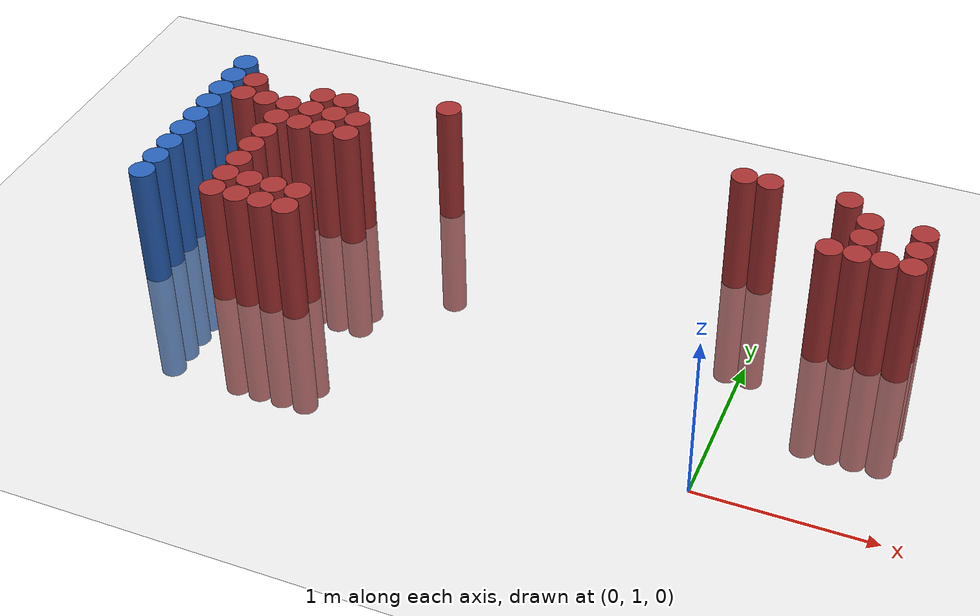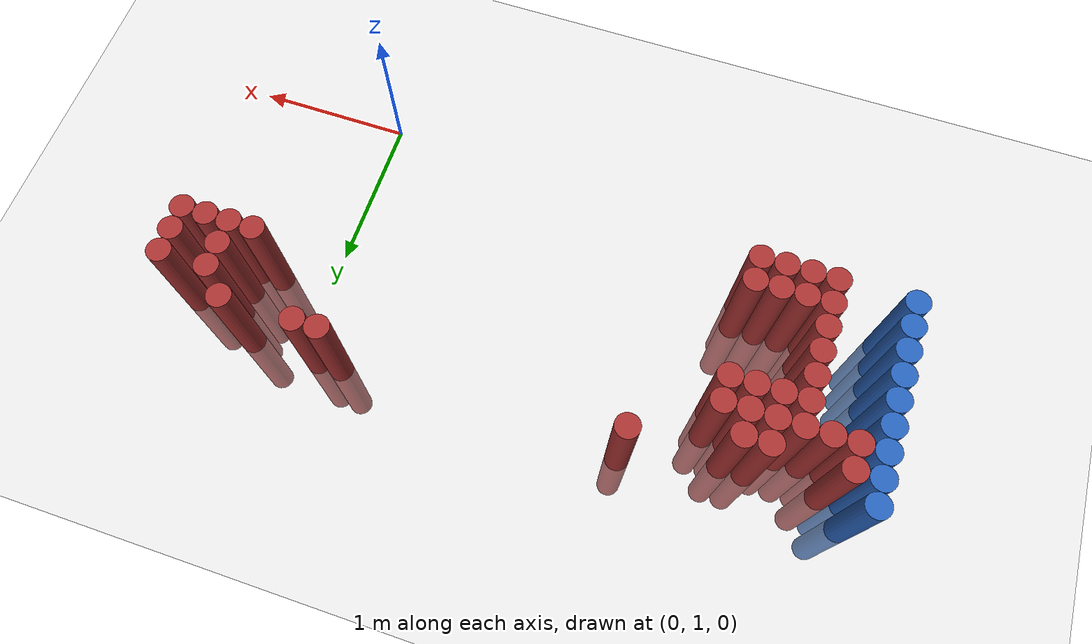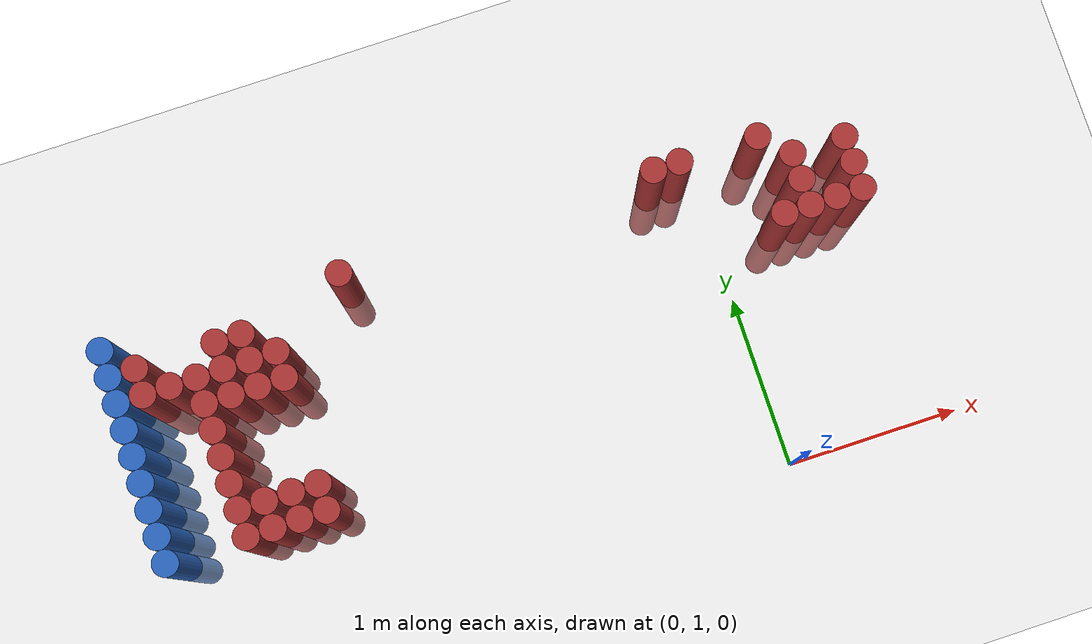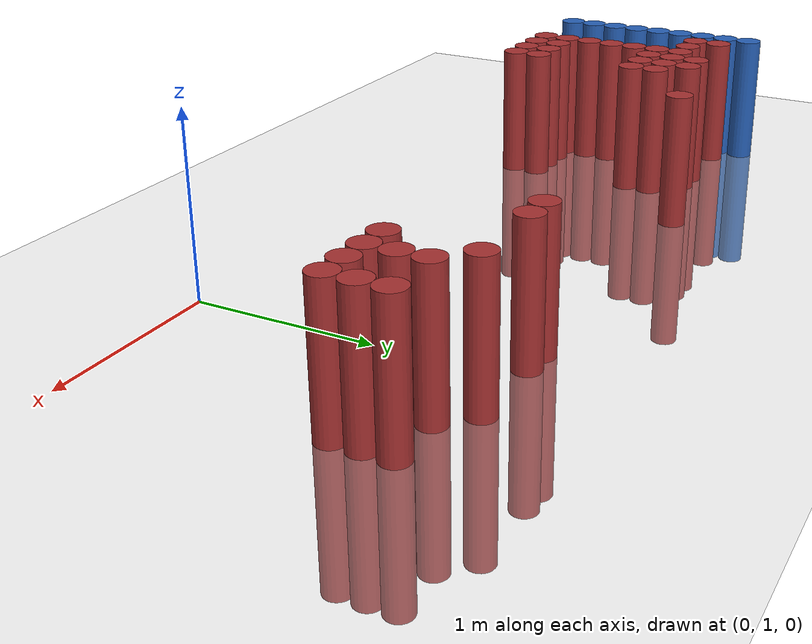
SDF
<sdf version="1.6">
 <world name="default">
  <model name="ground_plane">
   <static>1</static>
   <link name="link">
    <collision name="collision">
     <geometry><plane><normal>0 0 1</normal><size>100 100</size></plane></geometry>
     <surface><friction><ode><mu>100</mu><mu2>50</mu2></ode></friction></surface>
    </collision>
    <visual name="visual">
     <cast_shadows>0</cast_shadows>
     <geometry><plane><normal>0 0 1</normal><size>100 100</size></plane></geometry>
     <material>
      <script><uri>file://media/materials/scripts/gazebo.material</uri><name>Gazebo/Grey</name></script>
     </material>
    </visual>
   </link>
  </model>
  <model name="unit_cylinder_135">
   <static>1</static>
   <pose>-3.425000 1.525000 0.000000 0.000000 0.000000 0.000000</pose>
   <link name="link">
    <inertial>
     <mass>1</mass>
     <inertia><ixx>0.145833</ixx><ixy>0</ixy><ixz>0</ixz><iyy>0.145833</iyy><iyz>0</iyz><izz>0.125</izz></inertia>
    </inertial>
    <collision name="collision">
     <geometry><cylinder><radius>0.075000</radius><length>1.5</length></cylinder></geometry>
    </collision>
    <visual name="visual">
     <geometry><cylinder><radius>0.075000</radius><length>1.5</length></cylinder></geometry>
     <material>
      <ambient>0.152000 0.379000 0.720000 1</ambient>
      <diffuse>0.152000 0.379000 0.720000 1</diffuse>
     </material>
     <material>
      <script><name>Gazebo/Grey</name><uri>file://media/materials/scripts/gazebo.material</uri></script>
     </material>
    </visual>
   </link>
  </model>
  <model name="unit_cylinder_137">
   <static>1</static>
   <pose>-3.425000 1.675000 0.000000 0.000000 0.000000 0.000000</pose>
   <link name="link">
    <inertial>
     <mass>1</mass>
     <inertia><ixx>0.145833</ixx><ixy>0</ixy><ixz>0</ixz><iyy>0.145833</iyy><iyz>0</iyz><izz>0.125</izz></inertia>
    </inertial>
    <collision name="collision">
     <geometry><cylinder><radius>0.075000</radius><length>1.5</length></cylinder></geometry>
    </collision>
    <visual name="visual">
     <geometry><cylinder><radius>0.075000</radius><length>1.5</length></cylinder></geometry>
     <material>
      <ambient>0.152000 0.379000 0.720000 1</ambient>
      <diffuse>0.152000 0.379000 0.720000 1</diffuse>
     </material>
     <material>
      <script><name>Gazebo/Grey</name><uri>file://media/materials/scripts/gazebo.material</uri></script>
     </material>
    </visual>
   </link>
  </model>
  <model name="unit_cylinder_139">
   <static>1</static>
   <pose>-3.425000 1.825000 0.000000 0.000000 0.000000 0.000000</pose>
   <link name="link">
    <inertial>
     <mass>1</mass>
     <inertia><ixx>0.145833</ixx><ixy>0</ixy><ixz>0</ixz><iyy>0.145833</iyy><iyz>0</iyz><izz>0.125</izz></inertia>
    </inertial>
    <collision name="collision">
     <geometry><cylinder><radius>0.075000</radius><length>1.5</length></cylinder></geometry>
    </collision>
    <visual name="visual">
     <geometry><cylinder><radius>0.075000</radius><length>1.5</length></cylinder></geometry>
     <material>
      <ambient>0.152000 0.379000 0.720000 1</ambient>
      <diffuse>0.152000 0.379000 0.720000 1</diffuse>
     </material>
     <material>
      <script><name>Gazebo/Grey</name><uri>file://media/materials/scripts/gazebo.material</uri></script>
     </material>
    </visual>
   </link>
  </model>
  <model name="unit_cylinder_141">
   <static>1</static>
   <pose>-3.425000 1.975000 0.000000 0.000000 0.000000 0.000000</pose>
   <link name="link">
    <inertial>
     <mass>1</mass>
     <inertia><ixx>0.145833</ixx><ixy>0</ixy><ixz>0</ixz><iyy>0.145833</iyy><iyz>0</iyz><izz>0.125</izz></inertia>
    </inertial>
    <collision name="collision">
     <geometry><cylinder><radius>0.075000</radius><length>1.5</length></cylinder></geometry>
    </collision>
    <visual name="visual">
     <geometry><cylinder><radius>0.075000</radius><length>1.5</length></cylinder></geometry>
     <material>
      <ambient>0.152000 0.379000 0.720000 1</ambient>
      <diffuse>0.152000 0.379000 0.720000 1</diffuse>
     </material>
     <material>
      <script><name>Gazebo/Grey</name><uri>file://media/materials/scripts/gazebo.material</uri></script>
     </material>
    </visual>
   </link>
  </model>
  <model name="unit_cylinder_143">
   <static>1</static>
   <pose>-3.425000 2.125000 0.000000 0.000000 0.000000 0.000000</pose>
   <link name="link">
    <inertial>
     <mass>1</mass>
     <inertia><ixx>0.145833</ixx><ixy>0</ixy><ixz>0</ixz><iyy>0.145833</iyy><iyz>0</iyz><izz>0.125</izz></inertia>
    </inertial>
    <collision name="collision">
     <geometry><cylinder><radius>0.075000</radius><length>1.5</length></cylinder></geometry>
    </collision>
    <visual name="visual">
     <geometry><cylinder><radius>0.075000</radius><length>1.5</length></cylinder></geometry>
     <material>
      <ambient>0.152000 0.379000 0.720000 1</ambient>
      <diffuse>0.152000 0.379000 0.720000 1</diffuse>
     </material>
     <material>
      <script><name>Gazebo/Grey</name><uri>file://media/materials/scripts/gazebo.material</uri></script>
     </material>
    </visual>
   </link>
  </model>
  <model name="unit_cylinder_145">
   <static>1</static>
   <pose>-3.425000 2.275000 0.000000 0.000000 0.000000 0.000000</pose>
   <link name="link">
    <inertial>
     <mass>1</mass>
     <inertia><ixx>0.145833</ixx><ixy>0</ixy><ixz>0</ixz><iyy>0.145833</iyy><iyz>0</iyz><izz>0.125</izz></inertia>
    </inertial>
    <collision name="collision">
     <geometry><cylinder><radius>0.075000</radius><length>1.5</length></cylinder></geometry>
    </collision>
    <visual name="visual">
     <geometry><cylinder><radius>0.075000</radius><length>1.5</length></cylinder></geometry>
     <material>
      <ambient>0.152000 0.379000 0.720000 1</ambient>
      <diffuse>0.152000 0.379000 0.720000 1</diffuse>
     </material>
     <material>
      <script><name>Gazebo/Grey</name><uri>file://media/materials/scripts/gazebo.material</uri></script>
     </material>
    </visual>
   </link>
  </model>
  <model name="unit_cylinder_147">
   <static>1</static>
   <pose>-3.425000 2.425000 0.000000 0.000000 0.000000 0.000000</pose>
   <link name="link">
    <inertial>
     <mass>1</mass>
     <inertia><ixx>0.145833</ixx><ixy>0</ixy><ixz>0</ixz><iyy>0.145833</iyy><iyz>0</iyz><izz>0.125</izz></inertia>
    </inertial>
    <collision name="collision">
     <geometry><cylinder><radius>0.075000</radius><length>1.5</length></cylinder></geometry>
    </collision>
    <visual name="visual">
     <geometry><cylinder><radius>0.075000</radius><length>1.5</length></cylinder></geometry>
     <material>
      <ambient>0.152000 0.379000 0.720000 1</ambient>
      <diffuse>0.152000 0.379000 0.720000 1</diffuse>
     </material>
     <material>
      <script><name>Gazebo/Grey</name><uri>file://media/materials/scripts/gazebo.material</uri></script>
     </material>
    </visual>
   </link>
  </model>
  <model name="unit_cylinder_149">
   <static>1</static>
   <pose>-3.425000 2.575000 0.000000 0.000000 0.000000 0.000000</pose>
   <link name="link">
    <inertial>
     <mass>1</mass>
     <inertia><ixx>0.145833</ixx><ixy>0</ixy><ixz>0</ixz><iyy>0.145833</iyy><iyz>0</iyz><izz>0.125</izz></inertia>
    </inertial>
    <collision name="collision">
     <geometry><cylinder><radius>0.075000</radius><length>1.5</length></cylinder></geometry>
    </collision>
    <visual name="visual">
     <geometry><cylinder><radius>0.075000</radius><length>1.5</length></cylinder></geometry>
     <material>
      <ambient>0.152000 0.379000 0.720000 1</ambient>
      <diffuse>0.152000 0.379000 0.720000 1</diffuse>
     </material>
     <material>
      <script><name>Gazebo/Grey</name><uri>file://media/materials/scripts/gazebo.material</uri></script>
     </material>
    </visual>
   </link>
  </model>
  <model name="unit_cylinder_151">
   <static>1</static>
   <pose>-3.425000 2.725000 0.000000 0.000000 0.000000 0.000000</pose>
   <link name="link">
    <inertial>
     <mass>1</mass>
     <inertia><ixx>0.145833</ixx><ixy>0</ixy><ixz>0</ixz><iyy>0.145833</iyy><iyz>0</iyz><izz>0.125</izz></inertia>
    </inertial>
    <collision name="collision">
     <geometry><cylinder><radius>0.075000</radius><length>1.5</length></cylinder></geometry>
    </collision>
    <visual name="visual">
     <geometry><cylinder><radius>0.075000</radius><length>1.5</length></cylinder></geometry>
     <material>
      <ambient>0.152000 0.379000 0.720000 1</ambient>
      <diffuse>0.152000 0.379000 0.720000 1</diffuse>
     </material>
     <material>
      <script><name>Gazebo/Grey</name><uri>file://media/materials/scripts/gazebo.material</uri></script>
     </material>
    </visual>
   </link>
  </model>
  <model name="unit_cylinder_231">
   <static>1</static>
   <pose>-3.425000 1.525000 0.000000 0.000000 0.000000 0.000000</pose>
   <link name="link">
    <inertial>
     <mass>1</mass>
     <inertia><ixx>0.145833</ixx><ixy>0</ixy><ixz>0</ixz><iyy>0.145833</iyy><iyz>0</iyz><izz>0.125</izz></inertia>
    </inertial>
    <collision name="collision">
     <geometry><cylinder><radius>0.075000</radius><length>1.5</length></cylinder></geometry>
    </collision>
    <visual name="visual">
     <geometry><cylinder><radius>0.075000</radius><length>1.5</length></cylinder></geometry>
     <material>
      <ambient>0.152000 0.379000 0.720000 1</ambient>
      <diffuse>0.152000 0.379000 0.720000 1</diffuse>
     </material>
     <material>
      <script><name>Gazebo/Grey</name><uri>file://media/materials/scripts/gazebo.material</uri></script>
     </material>
    </visual>
   </link>
  </model>
  <model name="unit_cylinder_232">
   <static>1</static>
   <pose>-3.425000 1.675000 0.000000 0.000000 0.000000 0.000000</pose>
   <link name="link">
    <inertial>
     <mass>1</mass>
     <inertia><ixx>0.145833</ixx><ixy>0</ixy><ixz>0</ixz><iyy>0.145833</iyy><iyz>0</iyz><izz>0.125</izz></inertia>
    </inertial>
    <collision name="collision">
     <geometry><cylinder><radius>0.075000</radius><length>1.5</length></cylinder></geometry>
    </collision>
    <visual name="visual">
     <geometry><cylinder><radius>0.075000</radius><length>1.5</length></cylinder></geometry>
     <material>
      <ambient>0.152000 0.379000 0.720000 1</ambient>
      <diffuse>0.152000 0.379000 0.720000 1</diffuse>
     </material>
     <material>
      <script><name>Gazebo/Grey</name><uri>file://media/materials/scripts/gazebo.material</uri></script>
     </material>
    </visual>
   </link>
  </model>
  <model name="unit_cylinder_233">
   <static>1</static>
   <pose>-3.425000 1.825000 0.000000 0.000000 0.000000 0.000000</pose>
   <link name="link">
    <inertial>
     <mass>1</mass>
     <inertia><ixx>0.145833</ixx><ixy>0</ixy><ixz>0</ixz><iyy>0.145833</iyy><iyz>0</iyz><izz>0.125</izz></inertia>
    </inertial>
    <collision name="collision">
     <geometry><cylinder><radius>0.075000</radius><length>1.5</length></cylinder></geometry>
    </collision>
    <visual name="visual">
     <geometry><cylinder><radius>0.075000</radius><length>1.5</length></cylinder></geometry>
     <material>
      <ambient>0.152000 0.379000 0.720000 1</ambient>
      <diffuse>0.152000 0.379000 0.720000 1</diffuse>
     </material>
     <material>
      <script><name>Gazebo/Grey</name><uri>file://media/materials/scripts/gazebo.material</uri></script>
     </material>
    </visual>
   </link>
  </model>
  <model name="unit_cylinder_234">
   <static>1</static>
   <pose>-3.425000 1.975000 0.000000 0.000000 0.000000 0.000000</pose>
   <link name="link">
    <inertial>
     <mass>1</mass>
     <inertia><ixx>0.145833</ixx><ixy>0</ixy><ixz>0</ixz><iyy>0.145833</iyy><iyz>0</iyz><izz>0.125</izz></inertia>
    </inertial>
    <collision name="collision">
     <geometry><cylinder><radius>0.075000</radius><length>1.5</length></cylinder></geometry>
    </collision>
    <visual name="visual">
     <geometry><cylinder><radius>0.075000</radius><length>1.5</length></cylinder></geometry>
     <material>
      <ambient>0.152000 0.379000 0.720000 1</ambient>
      <diffuse>0.152000 0.379000 0.720000 1</diffuse>
     </material>
     <material>
      <script><name>Gazebo/Grey</name><uri>file://media/materials/scripts/gazebo.material</uri></script>
     </material>
    </visual>
   </link>
  </model>
  <model name="unit_cylinder_235">
   <static>1</static>
   <pose>-3.425000 2.125000 0.000000 0.000000 0.000000 0.000000</pose>
   <link name="link">
    <inertial>
     <mass>1</mass>
     <inertia><ixx>0.145833</ixx><ixy>0</ixy><ixz>0</ixz><iyy>0.145833</iyy><iyz>0</iyz><izz>0.125</izz></inertia>
    </inertial>
    <collision name="collision">
     <geometry><cylinder><radius>0.075000</radius><length>1.5</length></cylinder></geometry>
    </collision>
    <visual name="visual">
     <geometry><cylinder><radius>0.075000</radius><length>1.5</length></cylinder></geometry>
     <material>
      <ambient>0.152000 0.379000 0.720000 1</ambient>
      <diffuse>0.152000 0.379000 0.720000 1</diffuse>
     </material>
     <material>
      <script><name>Gazebo/Grey</name><uri>file://media/materials/scripts/gazebo.material</uri></script>
     </material>
    </visual>
   </link>
  </model>
  <model name="unit_cylinder_236">
   <static>1</static>
   <pose>-3.425000 2.275000 0.000000 0.000000 0.000000 0.000000</pose>
   <link name="link">
    <inertial>
     <mass>1</mass>
     <inertia><ixx>0.145833</ixx><ixy>0</ixy><ixz>0</ixz><iyy>0.145833</iyy><iyz>0</iyz><izz>0.125</izz></inertia>
    </inertial>
    <collision name="collision">
     <geometry><cylinder><radius>0.075000</radius><length>1.5</length></cylinder></geometry>
    </collision>
    <visual name="visual">
     <geometry><cylinder><radius>0.075000</radius><length>1.5</length></cylinder></geometry>
     <material>
      <ambient>0.152000 0.379000 0.720000 1</ambient>
      <diffuse>0.152000 0.379000 0.720000 1</diffuse>
     </material>
     <material>
      <script><name>Gazebo/Grey</name><uri>file://media/materials/scripts/gazebo.material</uri></script>
     </material>
    </visual>
   </link>
  </model>
  <model name="unit_cylinder_237">
   <static>1</static>
   <pose>-3.425000 2.425000 0.000000 0.000000 0.000000 0.000000</pose>
   <link name="link">
    <inertial>
     <mass>1</mass>
     <inertia><ixx>0.145833</ixx><ixy>0</ixy><ixz>0</ixz><iyy>0.145833</iyy><iyz>0</iyz><izz>0.125</izz></inertia>
    </inertial>
    <collision name="collision">
     <geometry><cylinder><radius>0.075000</radius><length>1.5</length></cylinder></geometry>
    </collision>
    <visual name="visual">
     <geometry><cylinder><radius>0.075000</radius><length>1.5</length></cylinder></geometry>
     <material>
      <ambient>0.152000 0.379000 0.720000 1</ambient>
      <diffuse>0.152000 0.379000 0.720000 1</diffuse>
     </material>
     <material>
      <script><name>Gazebo/Grey</name><uri>file://media/materials/scripts/gazebo.material</uri></script>
     </material>
    </visual>
   </link>
  </model>
  <model name="unit_cylinder_238">
   <static>1</static>
   <pose>-3.425000 2.575000 0.000000 0.000000 0.000000 0.000000</pose>
   <link name="link">
    <inertial>
     <mass>1</mass>
     <inertia><ixx>0.145833</ixx><ixy>0</ixy><ixz>0</ixz><iyy>0.145833</iyy><iyz>0</iyz><izz>0.125</izz></inertia>
    </inertial>
    <collision name="collision">
     <geometry><cylinder><radius>0.075000</radius><length>1.5</length></cylinder></geometry>
    </collision>
    <visual name="visual">
     <geometry><cylinder><radius>0.075000</radius><length>1.5</length></cylinder></geometry>
     <material>
      <ambient>0.152000 0.379000 0.720000 1</ambient>
      <diffuse>0.152000 0.379000 0.720000 1</diffuse>
     </material>
     <material>
      <script><name>Gazebo/Grey</name><uri>file://media/materials/scripts/gazebo.material</uri></script>
     </material>
    </visual>
   </link>
  </model>
  <model name="unit_cylinder_239">
   <static>1</static>
   <pose>-3.425000 2.725000 0.000000 0.000000 0.000000 0.000000</pose>
   <link name="link">
    <inertial>
     <mass>1</mass>
     <inertia><ixx>0.145833</ixx><ixy>0</ixy><ixz>0</ixz><iyy>0.145833</iyy><iyz>0</iyz><izz>0.125</izz></inertia>
    </inertial>
    <collision name="collision">
     <geometry><cylinder><radius>0.075000</radius><length>1.5</length></cylinder></geometry>
    </collision>
    <visual name="visual">
     <geometry><cylinder><radius>0.075000</radius><length>1.5</length></cylinder></geometry>
     <material>
      <ambient>0.152000 0.379000 0.720000 1</ambient>
      <diffuse>0.152000 0.379000 0.720000 1</diffuse>
     </material>
     <material>
      <script><name>Gazebo/Grey</name><uri>file://media/materials/scripts/gazebo.material</uri></script>
     </material>
    </visual>
   </link>
  </model>
  <model name="unit_cylinder_272">
   <static>1</static>
   <pose>-3.275000 2.425000 0.000000 0.000000 0.000000 0.000000</pose>
   <link name="link">
    <inertial>
     <mass>1</mass>
     <inertia><ixx>0.145833</ixx><ixy>0</ixy><ixz>0</ixz><iyy>0.145833</iyy><iyz>0</iyz><izz>0.125</izz></inertia>
    </inertial>
    <collision name="collision">
     <geometry><cylinder><radius>0.075000</radius><length>1.5</length></cylinder></geometry>
    </collision>
    <visual name="visual">
     <geometry><cylinder><radius>0.075000</radius><length>1.5</length></cylinder></geometry>
     <material>
      <ambient>0.648000 0.192000 0.192000 1</ambient>
      <diffuse>0.648000 0.192000 0.192000 1</diffuse>
     </material>
     <material>
      <script><name>Gazebo/Grey</name><uri>file://media/materials/scripts/gazebo.material</uri></script>
     </material>
    </visual>
   </link>
  </model>
  <model name="unit_cylinder_273">
   <static>1</static>
   <pose>-3.275000 2.575000 0.000000 0.000000 0.000000 0.000000</pose>
   <link name="link">
    <inertial>
     <mass>1</mass>
     <inertia><ixx>0.145833</ixx><ixy>0</ixy><ixz>0</ixz><iyy>0.145833</iyy><iyz>0</iyz><izz>0.125</izz></inertia>
    </inertial>
    <collision name="collision">
     <geometry><cylinder><radius>0.075000</radius><length>1.5</length></cylinder></geometry>
    </collision>
    <visual name="visual">
     <geometry><cylinder><radius>0.075000</radius><length>1.5</length></cylinder></geometry>
     <material>
      <ambient>0.648000 0.192000 0.192000 1</ambient>
      <diffuse>0.648000 0.192000 0.192000 1</diffuse>
     </material>
     <material>
      <script><name>Gazebo/Grey</name><uri>file://media/materials/scripts/gazebo.material</uri></script>
     </material>
    </visual>
   </link>
  </model>
  <model name="unit_cylinder_287">
   <static>1</static>
   <pose>-3.125000 2.425000 0.000000 0.000000 0.000000 0.000000</pose>
   <link name="link">
    <inertial>
     <mass>1</mass>
     <inertia><ixx>0.145833</ixx><ixy>0</ixy><ixz>0</ixz><iyy>0.145833</iyy><iyz>0</iyz><izz>0.125</izz></inertia>
    </inertial>
    <collision name="collision">
     <geometry><cylinder><radius>0.075000</radius><length>1.5</length></cylinder></geometry>
    </collision>
    <visual name="visual">
     <geometry><cylinder><radius>0.075000</radius><length>1.5</length></cylinder></geometry>
     <material>
      <ambient>0.648000 0.192000 0.192000 1</ambient>
      <diffuse>0.648000 0.192000 0.192000 1</diffuse>
     </material>
     <material>
      <script><name>Gazebo/Grey</name><uri>file://media/materials/scripts/gazebo.material</uri></script>
     </material>
    </visual>
   </link>
  </model>
  <model name="unit_cylinder_303">
   <static>1</static>
   <pose>-2.975000 1.525000 0.000000 0.000000 0.000000 0.000000</pose>
   <link name="link">
    <inertial>
     <mass>1</mass>
     <inertia><ixx>0.145833</ixx><ixy>0</ixy><ixz>0</ixz><iyy>0.145833</iyy><iyz>0</iyz><izz>0.125</izz></inertia>
    </inertial>
    <collision name="collision">
     <geometry><cylinder><radius>0.075000</radius><length>1.5</length></cylinder></geometry>
    </collision>
    <visual name="visual">
     <geometry><cylinder><radius>0.075000</radius><length>1.5</length></cylinder></geometry>
     <material>
      <ambient>0.648000 0.192000 0.192000 1</ambient>
      <diffuse>0.648000 0.192000 0.192000 1</diffuse>
     </material>
     <material>
      <script><name>Gazebo/Grey</name><uri>file://media/materials/scripts/gazebo.material</uri></script>
     </material>
    </visual>
   </link>
  </model>
  <model name="unit_cylinder_304">
   <static>1</static>
   <pose>-2.975000 1.675000 0.000000 0.000000 0.000000 0.000000</pose>
   <link name="link">
    <inertial>
     <mass>1</mass>
     <inertia><ixx>0.145833</ixx><ixy>0</ixy><ixz>0</ixz><iyy>0.145833</iyy><iyz>0</iyz><izz>0.125</izz></inertia>
    </inertial>
    <collision name="collision">
     <geometry><cylinder><radius>0.075000</radius><length>1.5</length></cylinder></geometry>
    </collision>
    <visual name="visual">
     <geometry><cylinder><radius>0.075000</radius><length>1.5</length></cylinder></geometry>
     <material>
      <ambient>0.648000 0.192000 0.192000 1</ambient>
      <diffuse>0.648000 0.192000 0.192000 1</diffuse>
     </material>
     <material>
      <script><name>Gazebo/Grey</name><uri>file://media/materials/scripts/gazebo.material</uri></script>
     </material>
    </visual>
   </link>
  </model>
  <model name="unit_cylinder_305">
   <static>1</static>
   <pose>-2.975000 1.825000 0.000000 0.000000 0.000000 0.000000</pose>
   <link name="link">
    <inertial>
     <mass>1</mass>
     <inertia><ixx>0.145833</ixx><ixy>0</ixy><ixz>0</ixz><iyy>0.145833</iyy><iyz>0</iyz><izz>0.125</izz></inertia>
    </inertial>
    <collision name="collision">
     <geometry><cylinder><radius>0.075000</radius><length>1.5</length></cylinder></geometry>
    </collision>
    <visual name="visual">
     <geometry><cylinder><radius>0.075000</radius><length>1.5</length></cylinder></geometry>
     <material>
      <ambient>0.648000 0.192000 0.192000 1</ambient>
      <diffuse>0.648000 0.192000 0.192000 1</diffuse>
     </material>
     <material>
      <script><name>Gazebo/Grey</name><uri>file://media/materials/scripts/gazebo.material</uri></script>
     </material>
    </visual>
   </link>
  </model>
  <model name="unit_cylinder_306">
   <static>1</static>
   <pose>-2.975000 1.975000 0.000000 0.000000 0.000000 0.000000</pose>
   <link name="link">
    <inertial>
     <mass>1</mass>
     <inertia><ixx>0.145833</ixx><ixy>0</ixy><ixz>0</ixz><iyy>0.145833</iyy><iyz>0</iyz><izz>0.125</izz></inertia>
    </inertial>
    <collision name="collision">
     <geometry><cylinder><radius>0.075000</radius><length>1.5</length></cylinder></geometry>
    </collision>
    <visual name="visual">
     <geometry><cylinder><radius>0.075000</radius><length>1.5</length></cylinder></geometry>
     <material>
      <ambient>0.648000 0.192000 0.192000 1</ambient>
      <diffuse>0.648000 0.192000 0.192000 1</diffuse>
     </material>
     <material>
      <script><name>Gazebo/Grey</name><uri>file://media/materials/scripts/gazebo.material</uri></script>
     </material>
    </visual>
   </link>
  </model>
  <model name="unit_cylinder_307">
   <static>1</static>
   <pose>-2.975000 2.125000 0.000000 0.000000 0.000000 0.000000</pose>
   <link name="link">
    <inertial>
     <mass>1</mass>
     <inertia><ixx>0.145833</ixx><ixy>0</ixy><ixz>0</ixz><iyy>0.145833</iyy><iyz>0</iyz><izz>0.125</izz></inertia>
    </inertial>
    <collision name="collision">
     <geometry><cylinder><radius>0.075000</radius><length>1.5</length></cylinder></geometry>
    </collision>
    <visual name="visual">
     <geometry><cylinder><radius>0.075000</radius><length>1.5</length></cylinder></geometry>
     <material>
      <ambient>0.648000 0.192000 0.192000 1</ambient>
      <diffuse>0.648000 0.192000 0.192000 1</diffuse>
     </material>
     <material>
      <script><name>Gazebo/Grey</name><uri>file://media/materials/scripts/gazebo.material</uri></script>
     </material>
    </visual>
   </link>
  </model>
  <model name="unit_cylinder_308">
   <static>1</static>
   <pose>-2.975000 2.275000 0.000000 0.000000 0.000000 0.000000</pose>
   <link name="link">
    <inertial>
     <mass>1</mass>
     <inertia><ixx>0.145833</ixx><ixy>0</ixy><ixz>0</ixz><iyy>0.145833</iyy><iyz>0</iyz><izz>0.125</izz></inertia>
    </inertial>
    <collision name="collision">
     <geometry><cylinder><radius>0.075000</radius><length>1.5</length></cylinder></geometry>
    </collision>
    <visual name="visual">
     <geometry><cylinder><radius>0.075000</radius><length>1.5</length></cylinder></geometry>
     <material>
      <ambient>0.648000 0.192000 0.192000 1</ambient>
      <diffuse>0.648000 0.192000 0.192000 1</diffuse>
     </material>
     <material>
      <script><name>Gazebo/Grey</name><uri>file://media/materials/scripts/gazebo.material</uri></script>
     </material>
    </visual>
   </link>
  </model>
  <model name="unit_cylinder_309">
   <static>1</static>
   <pose>-2.975000 2.425000 0.000000 0.000000 0.000000 0.000000</pose>
   <link name="link">
    <inertial>
     <mass>1</mass>
     <inertia><ixx>0.145833</ixx><ixy>0</ixy><ixz>0</ixz><iyy>0.145833</iyy><iyz>0</iyz><izz>0.125</izz></inertia>
    </inertial>
    <collision name="collision">
     <geometry><cylinder><radius>0.075000</radius><length>1.5</length></cylinder></geometry>
    </collision>
    <visual name="visual">
     <geometry><cylinder><radius>0.075000</radius><length>1.5</length></cylinder></geometry>
     <material>
      <ambient>0.648000 0.192000 0.192000 1</ambient>
      <diffuse>0.648000 0.192000 0.192000 1</diffuse>
     </material>
     <material>
      <script><name>Gazebo/Grey</name><uri>file://media/materials/scripts/gazebo.material</uri></script>
     </material>
    </visual>
   </link>
  </model>
  <model name="unit_cylinder_317">
   <static>1</static>
   <pose>-2.825000 1.525000 0.000000 0.000000 0.000000 0.000000</pose>
   <link name="link">
    <inertial>
     <mass>1</mass>
     <inertia><ixx>0.145833</ixx><ixy>0</ixy><ixz>0</ixz><iyy>0.145833</iyy><iyz>0</iyz><izz>0.125</izz></inertia>
    </inertial>
    <collision name="collision">
     <geometry><cylinder><radius>0.075000</radius><length>1.5</length></cylinder></geometry>
    </collision>
    <visual name="visual">
     <geometry><cylinder><radius>0.075000</radius><length>1.5</length></cylinder></geometry>
     <material>
      <ambient>0.648000 0.192000 0.192000 1</ambient>
      <diffuse>0.648000 0.192000 0.192000 1</diffuse>
     </material>
     <material>
      <script><name>Gazebo/Grey</name><uri>file://media/materials/scripts/gazebo.material</uri></script>
     </material>
    </visual>
   </link>
  </model>
  <model name="unit_cylinder_318">
   <static>1</static>
   <pose>-2.825000 1.675000 0.000000 0.000000 0.000000 0.000000</pose>
   <link name="link">
    <inertial>
     <mass>1</mass>
     <inertia><ixx>0.145833</ixx><ixy>0</ixy><ixz>0</ixz><iyy>0.145833</iyy><iyz>0</iyz><izz>0.125</izz></inertia>
    </inertial>
    <collision name="collision">
     <geometry><cylinder><radius>0.075000</radius><length>1.5</length></cylinder></geometry>
    </collision>
    <visual name="visual">
     <geometry><cylinder><radius>0.075000</radius><length>1.5</length></cylinder></geometry>
     <material>
      <ambient>0.648000 0.192000 0.192000 1</ambient>
      <diffuse>0.648000 0.192000 0.192000 1</diffuse>
     </material>
     <material>
      <script><name>Gazebo/Grey</name><uri>file://media/materials/scripts/gazebo.material</uri></script>
     </material>
    </visual>
   </link>
  </model>
  <model name="unit_cylinder_319">
   <static>1</static>
   <pose>-2.825000 2.275000 0.000000 0.000000 0.000000 0.000000</pose>
   <link name="link">
    <inertial>
     <mass>1</mass>
     <inertia><ixx>0.145833</ixx><ixy>0</ixy><ixz>0</ixz><iyy>0.145833</iyy><iyz>0</iyz><izz>0.125</izz></inertia>
    </inertial>
    <collision name="collision">
     <geometry><cylinder><radius>0.075000</radius><length>1.5</length></cylinder></geometry>
    </collision>
    <visual name="visual">
     <geometry><cylinder><radius>0.075000</radius><length>1.5</length></cylinder></geometry>
     <material>
      <ambient>0.648000 0.192000 0.192000 1</ambient>
      <diffuse>0.648000 0.192000 0.192000 1</diffuse>
     </material>
     <material>
      <script><name>Gazebo/Grey</name><uri>file://media/materials/scripts/gazebo.material</uri></script>
     </material>
    </visual>
   </link>
  </model>
  <model name="unit_cylinder_320">
   <static>1</static>
   <pose>-2.825000 2.425000 0.000000 0.000000 0.000000 0.000000</pose>
   <link name="link">
    <inertial>
     <mass>1</mass>
     <inertia><ixx>0.145833</ixx><ixy>0</ixy><ixz>0</ixz><iyy>0.145833</iyy><iyz>0</iyz><izz>0.125</izz></inertia>
    </inertial>
    <collision name="collision">
     <geometry><cylinder><radius>0.075000</radius><length>1.5</length></cylinder></geometry>
    </collision>
    <visual name="visual">
     <geometry><cylinder><radius>0.075000</radius><length>1.5</length></cylinder></geometry>
     <material>
      <ambient>0.648000 0.192000 0.192000 1</ambient>
      <diffuse>0.648000 0.192000 0.192000 1</diffuse>
     </material>
     <material>
      <script><name>Gazebo/Grey</name><uri>file://media/materials/scripts/gazebo.material</uri></script>
     </material>
    </visual>
   </link>
  </model>
  <model name="unit_cylinder_321">
   <static>1</static>
   <pose>-2.825000 2.575000 0.000000 0.000000 0.000000 0.000000</pose>
   <link name="link">
    <inertial>
     <mass>1</mass>
     <inertia><ixx>0.145833</ixx><ixy>0</ixy><ixz>0</ixz><iyy>0.145833</iyy><iyz>0</iyz><izz>0.125</izz></inertia>
    </inertial>
    <collision name="collision">
     <geometry><cylinder><radius>0.075000</radius><length>1.5</length></cylinder></geometry>
    </collision>
    <visual name="visual">
     <geometry><cylinder><radius>0.075000</radius><length>1.5</length></cylinder></geometry>
     <material>
      <ambient>0.648000 0.192000 0.192000 1</ambient>
      <diffuse>0.648000 0.192000 0.192000 1</diffuse>
     </material>
     <material>
      <script><name>Gazebo/Grey</name><uri>file://media/materials/scripts/gazebo.material</uri></script>
     </material>
    </visual>
   </link>
  </model>
  <model name="unit_cylinder_325">
   <static>1</static>
   <pose>-2.675000 1.525000 0.000000 0.000000 0.000000 0.000000</pose>
   <link name="link">
    <inertial>
     <mass>1</mass>
     <inertia><ixx>0.145833</ixx><ixy>0</ixy><ixz>0</ixz><iyy>0.145833</iyy><iyz>0</iyz><izz>0.125</izz></inertia>
    </inertial>
    <collision name="collision">
     <geometry><cylinder><radius>0.075000</radius><length>1.5</length></cylinder></geometry>
    </collision>
    <visual name="visual">
     <geometry><cylinder><radius>0.075000</radius><length>1.5</length></cylinder></geometry>
     <material>
      <ambient>0.648000 0.192000 0.192000 1</ambient>
      <diffuse>0.648000 0.192000 0.192000 1</diffuse>
     </material>
     <material>
      <script><name>Gazebo/Grey</name><uri>file://media/materials/scripts/gazebo.material</uri></script>
     </material>
    </visual>
   </link>
  </model>
  <model name="unit_cylinder_326">
   <static>1</static>
   <pose>-2.675000 1.675000 0.000000 0.000000 0.000000 0.000000</pose>
   <link name="link">
    <inertial>
     <mass>1</mass>
     <inertia><ixx>0.145833</ixx><ixy>0</ixy><ixz>0</ixz><iyy>0.145833</iyy><iyz>0</iyz><izz>0.125</izz></inertia>
    </inertial>
    <collision name="collision">
     <geometry><cylinder><radius>0.075000</radius><length>1.5</length></cylinder></geometry>
    </collision>
    <visual name="visual">
     <geometry><cylinder><radius>0.075000</radius><length>1.5</length></cylinder></geometry>
     <material>
      <ambient>0.648000 0.192000 0.192000 1</ambient>
      <diffuse>0.648000 0.192000 0.192000 1</diffuse>
     </material>
     <material>
      <script><name>Gazebo/Grey</name><uri>file://media/materials/scripts/gazebo.material</uri></script>
     </material>
    </visual>
   </link>
  </model>
  <model name="unit_cylinder_327">
   <static>1</static>
   <pose>-2.675000 2.275000 0.000000 0.000000 0.000000 0.000000</pose>
   <link name="link">
    <inertial>
     <mass>1</mass>
     <inertia><ixx>0.145833</ixx><ixy>0</ixy><ixz>0</ixz><iyy>0.145833</iyy><iyz>0</iyz><izz>0.125</izz></inertia>
    </inertial>
    <collision name="collision">
     <geometry><cylinder><radius>0.075000</radius><length>1.5</length></cylinder></geometry>
    </collision>
    <visual name="visual">
     <geometry><cylinder><radius>0.075000</radius><length>1.5</length></cylinder></geometry>
     <material>
      <ambient>0.648000 0.192000 0.192000 1</ambient>
      <diffuse>0.648000 0.192000 0.192000 1</diffuse>
     </material>
     <material>
      <script><name>Gazebo/Grey</name><uri>file://media/materials/scripts/gazebo.material</uri></script>
     </material>
    </visual>
   </link>
  </model>
  <model name="unit_cylinder_328">
   <static>1</static>
   <pose>-2.675000 2.425000 0.000000 0.000000 0.000000 0.000000</pose>
   <link name="link">
    <inertial>
     <mass>1</mass>
     <inertia><ixx>0.145833</ixx><ixy>0</ixy><ixz>0</ixz><iyy>0.145833</iyy><iyz>0</iyz><izz>0.125</izz></inertia>
    </inertial>
    <collision name="collision">
     <geometry><cylinder><radius>0.075000</radius><length>1.5</length></cylinder></geometry>
    </collision>
    <visual name="visual">
     <geometry><cylinder><radius>0.075000</radius><length>1.5</length></cylinder></geometry>
     <material>
      <ambient>0.648000 0.192000 0.192000 1</ambient>
      <diffuse>0.648000 0.192000 0.192000 1</diffuse>
     </material>
     <material>
      <script><name>Gazebo/Grey</name><uri>file://media/materials/scripts/gazebo.material</uri></script>
     </material>
    </visual>
   </link>
  </model>
  <model name="unit_cylinder_329">
   <static>1</static>
   <pose>-2.675000 2.575000 0.000000 0.000000 0.000000 0.000000</pose>
   <link name="link">
    <inertial>
     <mass>1</mass>
     <inertia><ixx>0.145833</ixx><ixy>0</ixy><ixz>0</ixz><iyy>0.145833</iyy><iyz>0</iyz><izz>0.125</izz></inertia>
    </inertial>
    <collision name="collision">
     <geometry><cylinder><radius>0.075000</radius><length>1.5</length></cylinder></geometry>
    </collision>
    <visual name="visual">
     <geometry><cylinder><radius>0.075000</radius><length>1.5</length></cylinder></geometry>
     <material>
      <ambient>0.648000 0.192000 0.192000 1</ambient>
      <diffuse>0.648000 0.192000 0.192000 1</diffuse>
     </material>
     <material>
      <script><name>Gazebo/Grey</name><uri>file://media/materials/scripts/gazebo.material</uri></script>
     </material>
    </visual>
   </link>
  </model>
  <model name="unit_cylinder_332">
   <static>1</static>
   <pose>-2.525000 1.525000 0.000000 0.000000 0.000000 0.000000</pose>
   <link name="link">
    <inertial>
     <mass>1</mass>
     <inertia><ixx>0.145833</ixx><ixy>0</ixy><ixz>0</ixz><iyy>0.145833</iyy><iyz>0</iyz><izz>0.125</izz></inertia>
    </inertial>
    <collision name="collision">
     <geometry><cylinder><radius>0.075000</radius><length>1.5</length></cylinder></geometry>
    </collision>
    <visual name="visual">
     <geometry><cylinder><radius>0.075000</radius><length>1.5</length></cylinder></geometry>
     <material>
      <ambient>0.648000 0.192000 0.192000 1</ambient>
      <diffuse>0.648000 0.192000 0.192000 1</diffuse>
     </material>
     <material>
      <script><name>Gazebo/Grey</name><uri>file://media/materials/scripts/gazebo.material</uri></script>
     </material>
    </visual>
   </link>
  </model>
  <model name="unit_cylinder_333">
   <static>1</static>
   <pose>-2.525000 1.675000 0.000000 0.000000 0.000000 0.000000</pose>
   <link name="link">
    <inertial>
     <mass>1</mass>
     <inertia><ixx>0.145833</ixx><ixy>0</ixy><ixz>0</ixz><iyy>0.145833</iyy><iyz>0</iyz><izz>0.125</izz></inertia>
    </inertial>
    <collision name="collision">
     <geometry><cylinder><radius>0.075000</radius><length>1.5</length></cylinder></geometry>
    </collision>
    <visual name="visual">
     <geometry><cylinder><radius>0.075000</radius><length>1.5</length></cylinder></geometry>
     <material>
      <ambient>0.648000 0.192000 0.192000 1</ambient>
      <diffuse>0.648000 0.192000 0.192000 1</diffuse>
     </material>
     <material>
      <script><name>Gazebo/Grey</name><uri>file://media/materials/scripts/gazebo.material</uri></script>
     </material>
    </visual>
   </link>
  </model>
  <model name="unit_cylinder_334">
   <static>1</static>
   <pose>-2.525000 2.275000 0.000000 0.000000 0.000000 0.000000</pose>
   <link name="link">
    <inertial>
     <mass>1</mass>
     <inertia><ixx>0.145833</ixx><ixy>0</ixy><ixz>0</ixz><iyy>0.145833</iyy><iyz>0</iyz><izz>0.125</izz></inertia>
    </inertial>
    <collision name="collision">
     <geometry><cylinder><radius>0.075000</radius><length>1.5</length></cylinder></geometry>
    </collision>
    <visual name="visual">
     <geometry><cylinder><radius>0.075000</radius><length>1.5</length></cylinder></geometry>
     <material>
      <ambient>0.648000 0.192000 0.192000 1</ambient>
      <diffuse>0.648000 0.192000 0.192000 1</diffuse>
     </material>
     <material>
      <script><name>Gazebo/Grey</name><uri>file://media/materials/scripts/gazebo.material</uri></script>
     </material>
    </visual>
   </link>
  </model>
  <model name="unit_cylinder_335">
   <static>1</static>
   <pose>-2.525000 2.425000 0.000000 0.000000 0.000000 0.000000</pose>
   <link name="link">
    <inertial>
     <mass>1</mass>
     <inertia><ixx>0.145833</ixx><ixy>0</ixy><ixz>0</ixz><iyy>0.145833</iyy><iyz>0</iyz><izz>0.125</izz></inertia>
    </inertial>
    <collision name="collision">
     <geometry><cylinder><radius>0.075000</radius><length>1.5</length></cylinder></geometry>
    </collision>
    <visual name="visual">
     <geometry><cylinder><radius>0.075000</radius><length>1.5</length></cylinder></geometry>
     <material>
      <ambient>0.648000 0.192000 0.192000 1</ambient>
      <diffuse>0.648000 0.192000 0.192000 1</diffuse>
     </material>
     <material>
      <script><name>Gazebo/Grey</name><uri>file://media/materials/scripts/gazebo.material</uri></script>
     </material>
    </visual>
   </link>
  </model>
  <model name="unit_cylinder_339">
   <static>1</static>
   <pose>-2.075000 2.725000 0.000000 0.000000 0.000000 0.000000</pose>
   <link name="link">
    <inertial>
     <mass>1</mass>
     <inertia><ixx>0.145833</ixx><ixy>0</ixy><ixz>0</ixz><iyy>0.145833</iyy><iyz>0</iyz><izz>0.125</izz></inertia>
    </inertial>
    <collision name="collision">
     <geometry><cylinder><radius>0.075000</radius><length>1.5</length></cylinder></geometry>
    </collision>
    <visual name="visual">
     <geometry><cylinder><radius>0.075000</radius><length>1.5</length></cylinder></geometry>
     <material>
      <ambient>0.648000 0.192000 0.192000 1</ambient>
      <diffuse>0.648000 0.192000 0.192000 1</diffuse>
     </material>
     <material>
      <script><name>Gazebo/Grey</name><uri>file://media/materials/scripts/gazebo.material</uri></script>
     </material>
    </visual>
   </link>
  </model>
  <model name="unit_cylinder_358">
   <static>1</static>
   <pose>-0.275000 2.725000 0.000000 0.000000 0.000000 0.000000</pose>
   <link name="link">
    <inertial>
     <mass>1</mass>
     <inertia><ixx>0.145833</ixx><ixy>0</ixy><ixz>0</ixz><iyy>0.145833</iyy><iyz>0</iyz><izz>0.125</izz></inertia>
    </inertial>
    <collision name="collision">
     <geometry><cylinder><radius>0.075000</radius><length>1.5</length></cylinder></geometry>
    </collision>
    <visual name="visual">
     <geometry><cylinder><radius>0.075000</radius><length>1.5</length></cylinder></geometry>
     <material>
      <ambient>0.648000 0.192000 0.192000 1</ambient>
      <diffuse>0.648000 0.192000 0.192000 1</diffuse>
     </material>
     <material>
      <script><name>Gazebo/Grey</name><uri>file://media/materials/scripts/gazebo.material</uri></script>
     </material>
    </visual>
   </link>
  </model>
  <model name="unit_cylinder_365">
   <static>1</static>
   <pose>-0.125000 2.725000 0.000000 0.000000 0.000000 0.000000</pose>
   <link name="link">
    <inertial>
     <mass>1</mass>
     <inertia><ixx>0.145833</ixx><ixy>0</ixy><ixz>0</ixz><iyy>0.145833</iyy><iyz>0</iyz><izz>0.125</izz></inertia>
    </inertial>
    <collision name="collision">
     <geometry><cylinder><radius>0.075000</radius><length>1.5</length></cylinder></geometry>
    </collision>
    <visual name="visual">
     <geometry><cylinder><radius>0.075000</radius><length>1.5</length></cylinder></geometry>
     <material>
      <ambient>0.648000 0.192000 0.192000 1</ambient>
      <diffuse>0.648000 0.192000 0.192000 1</diffuse>
     </material>
     <material>
      <script><name>Gazebo/Grey</name><uri>file://media/materials/scripts/gazebo.material</uri></script>
     </material>
    </visual>
   </link>
  </model>
  <model name="unit_cylinder_389">
   <static>1</static>
   <pose>0.325000 2.275000 0.000000 0.000000 0.000000 0.000000</pose>
   <link name="link">
    <inertial>
     <mass>1</mass>
     <inertia><ixx>0.145833</ixx><ixy>0</ixy><ixz>0</ixz><iyy>0.145833</iyy><iyz>0</iyz><izz>0.125</izz></inertia>
    </inertial>
    <collision name="collision">
     <geometry><cylinder><radius>0.075000</radius><length>1.5</length></cylinder></geometry>
    </collision>
    <visual name="visual">
     <geometry><cylinder><radius>0.075000</radius><length>1.5</length></cylinder></geometry>
     <material>
      <ambient>0.648000 0.192000 0.192000 1</ambient>
      <diffuse>0.648000 0.192000 0.192000 1</diffuse>
     </material>
     <material>
      <script><name>Gazebo/Grey</name><uri>file://media/materials/scripts/gazebo.material</uri></script>
     </material>
    </visual>
   </link>
  </model>
  <model name="unit_cylinder_390">
   <static>1</static>
   <pose>0.325000 2.725000 0.000000 0.000000 0.000000 0.000000</pose>
   <link name="link">
    <inertial>
     <mass>1</mass>
     <inertia><ixx>0.145833</ixx><ixy>0</ixy><ixz>0</ixz><iyy>0.145833</iyy><iyz>0</iyz><izz>0.125</izz></inertia>
    </inertial>
    <collision name="collision">
     <geometry><cylinder><radius>0.075000</radius><length>1.5</length></cylinder></geometry>
    </collision>
    <visual name="visual">
     <geometry><cylinder><radius>0.075000</radius><length>1.5</length></cylinder></geometry>
     <material>
      <ambient>0.648000 0.192000 0.192000 1</ambient>
      <diffuse>0.648000 0.192000 0.192000 1</diffuse>
     </material>
     <material>
      <script><name>Gazebo/Grey</name><uri>file://media/materials/scripts/gazebo.material</uri></script>
     </material>
    </visual>
   </link>
  </model>
  <model name="unit_cylinder_399">
   <static>1</static>
   <pose>0.475000 2.275000 0.000000 0.000000 0.000000 0.000000</pose>
   <link name="link">
    <inertial>
     <mass>1</mass>
     <inertia><ixx>0.145833</ixx><ixy>0</ixy><ixz>0</ixz><iyy>0.145833</iyy><iyz>0</iyz><izz>0.125</izz></inertia>
    </inertial>
    <collision name="collision">
     <geometry><cylinder><radius>0.075000</radius><length>1.5</length></cylinder></geometry>
    </collision>
    <visual name="visual">
     <geometry><cylinder><radius>0.075000</radius><length>1.5</length></cylinder></geometry>
     <material>
      <ambient>0.648000 0.192000 0.192000 1</ambient>
      <diffuse>0.648000 0.192000 0.192000 1</diffuse>
     </material>
     <material>
      <script><name>Gazebo/Grey</name><uri>file://media/materials/scripts/gazebo.material</uri></script>
     </material>
    </visual>
   </link>
  </model>
  <model name="unit_cylinder_400">
   <static>1</static>
   <pose>0.475000 2.425000 0.000000 0.000000 0.000000 0.000000</pose>
   <link name="link">
    <inertial>
     <mass>1</mass>
     <inertia><ixx>0.145833</ixx><ixy>0</ixy><ixz>0</ixz><iyy>0.145833</iyy><iyz>0</iyz><izz>0.125</izz></inertia>
    </inertial>
    <collision name="collision">
     <geometry><cylinder><radius>0.075000</radius><length>1.5</length></cylinder></geometry>
    </collision>
    <visual name="visual">
     <geometry><cylinder><radius>0.075000</radius><length>1.5</length></cylinder></geometry>
     <material>
      <ambient>0.648000 0.192000 0.192000 1</ambient>
      <diffuse>0.648000 0.192000 0.192000 1</diffuse>
     </material>
     <material>
      <script><name>Gazebo/Grey</name><uri>file://media/materials/scripts/gazebo.material</uri></script>
     </material>
    </visual>
   </link>
  </model>
  <model name="unit_cylinder_401">
   <static>1</static>
   <pose>0.475000 2.575000 0.000000 0.000000 0.000000 0.000000</pose>
   <link name="link">
    <inertial>
     <mass>1</mass>
     <inertia><ixx>0.145833</ixx><ixy>0</ixy><ixz>0</ixz><iyy>0.145833</iyy><iyz>0</iyz><izz>0.125</izz></inertia>
    </inertial>
    <collision name="collision">
     <geometry><cylinder><radius>0.075000</radius><length>1.5</length></cylinder></geometry>
    </collision>
    <visual name="visual">
     <geometry><cylinder><radius>0.075000</radius><length>1.5</length></cylinder></geometry>
     <material>
      <ambient>0.648000 0.192000 0.192000 1</ambient>
      <diffuse>0.648000 0.192000 0.192000 1</diffuse>
     </material>
     <material>
      <script><name>Gazebo/Grey</name><uri>file://media/materials/scripts/gazebo.material</uri></script>
     </material>
    </visual>
   </link>
  </model>
  <model name="unit_cylinder_407">
   <static>1</static>
   <pose>0.625000 2.275000 0.000000 0.000000 0.000000 0.000000</pose>
   <link name="link">
    <inertial>
     <mass>1</mass>
     <inertia><ixx>0.145833</ixx><ixy>0</ixy><ixz>0</ixz><iyy>0.145833</iyy><iyz>0</iyz><izz>0.125</izz></inertia>
    </inertial>
    <collision name="collision">
     <geometry><cylinder><radius>0.075000</radius><length>1.5</length></cylinder></geometry>
    </collision>
    <visual name="visual">
     <geometry><cylinder><radius>0.075000</radius><length>1.5</length></cylinder></geometry>
     <material>
      <ambient>0.648000 0.192000 0.192000 1</ambient>
      <diffuse>0.648000 0.192000 0.192000 1</diffuse>
     </material>
     <material>
      <script><name>Gazebo/Grey</name><uri>file://media/materials/scripts/gazebo.material</uri></script>
     </material>
    </visual>
   </link>
  </model>
  <model name="unit_cylinder_415">
   <static>1</static>
   <pose>0.775000 2.275000 0.000000 0.000000 0.000000 0.000000</pose>
   <link name="link">
    <inertial>
     <mass>1</mass>
     <inertia><ixx>0.145833</ixx><ixy>0</ixy><ixz>0</ixz><iyy>0.145833</iyy><iyz>0</iyz><izz>0.125</izz></inertia>
    </inertial>
    <collision name="collision">
     <geometry><cylinder><radius>0.075000</radius><length>1.5</length></cylinder></geometry>
    </collision>
    <visual name="visual">
     <geometry><cylinder><radius>0.075000</radius><length>1.5</length></cylinder></geometry>
     <material>
      <ambient>0.648000 0.192000 0.192000 1</ambient>
      <diffuse>0.648000 0.192000 0.192000 1</diffuse>
     </material>
     <material>
      <script><name>Gazebo/Grey</name><uri>file://media/materials/scripts/gazebo.material</uri></script>
     </material>
    </visual>
   </link>
  </model>
  <model name="unit_cylinder_416">
   <static>1</static>
   <pose>0.775000 2.425000 0.000000 0.000000 0.000000 0.000000</pose>
   <link name="link">
    <inertial>
     <mass>1</mass>
     <inertia><ixx>0.145833</ixx><ixy>0</ixy><ixz>0</ixz><iyy>0.145833</iyy><iyz>0</iyz><izz>0.125</izz></inertia>
    </inertial>
    <collision name="collision">
     <geometry><cylinder><radius>0.075000</radius><length>1.5</length></cylinder></geometry>
    </collision>
    <visual name="visual">
     <geometry><cylinder><radius>0.075000</radius><length>1.5</length></cylinder></geometry>
     <material>
      <ambient>0.648000 0.192000 0.192000 1</ambient>
      <diffuse>0.648000 0.192000 0.192000 1</diffuse>
     </material>
     <material>
      <script><name>Gazebo/Grey</name><uri>file://media/materials/scripts/gazebo.material</uri></script>
     </material>
    </visual>
   </link>
  </model>
  <model name="unit_cylinder_417">
   <static>1</static>
   <pose>0.775000 2.575000 0.000000 0.000000 0.000000 0.000000</pose>
   <link name="link">
    <inertial>
     <mass>1</mass>
     <inertia><ixx>0.145833</ixx><ixy>0</ixy><ixz>0</ixz><iyy>0.145833</iyy><iyz>0</iyz><izz>0.125</izz></inertia>
    </inertial>
    <collision name="collision">
     <geometry><cylinder><radius>0.075000</radius><length>1.5</length></cylinder></geometry>
    </collision>
    <visual name="visual">
     <geometry><cylinder><radius>0.075000</radius><length>1.5</length></cylinder></geometry>
     <material>
      <ambient>0.648000 0.192000 0.192000 1</ambient>
      <diffuse>0.648000 0.192000 0.192000 1</diffuse>
     </material>
     <material>
      <script><name>Gazebo/Grey</name><uri>file://media/materials/scripts/gazebo.material</uri></script>
     </material>
    </visual>
   </link>
  </model>
 </world>
</sdf>
